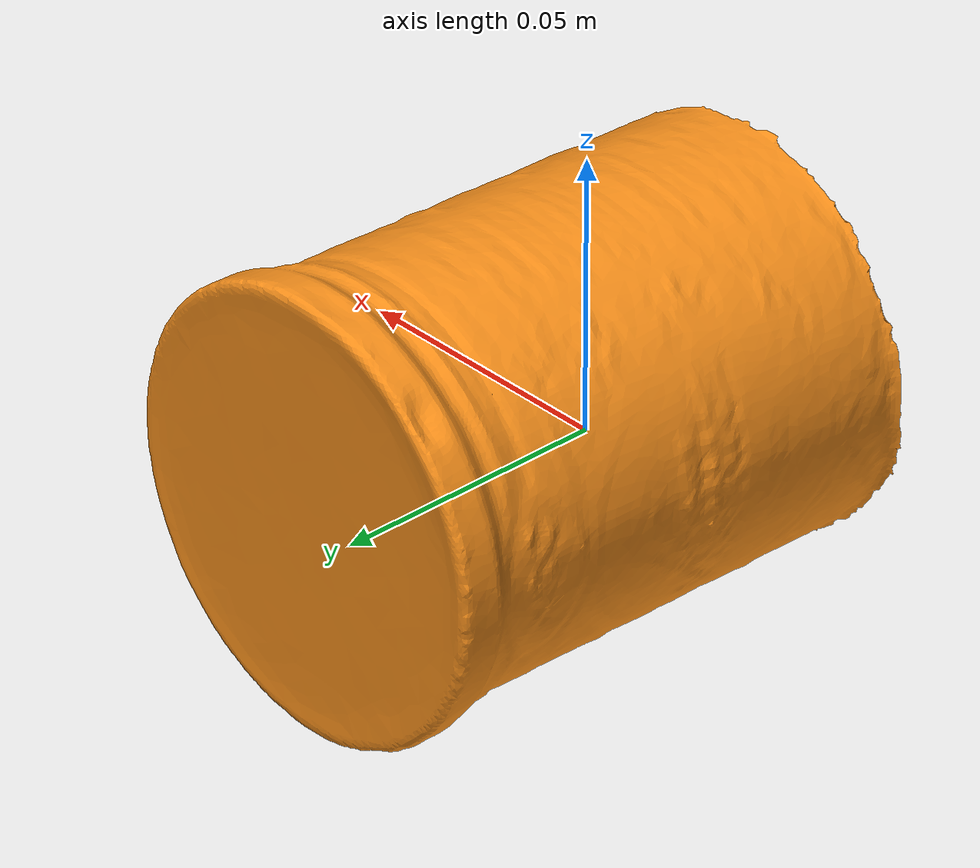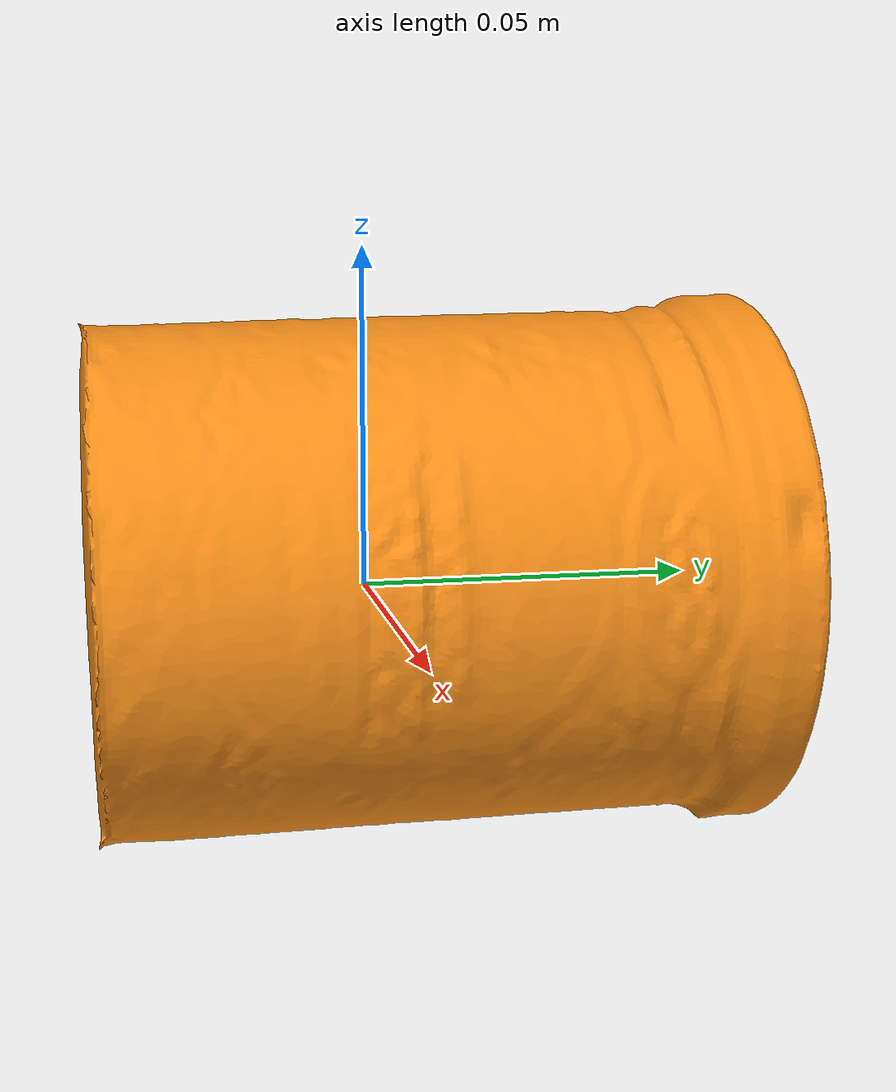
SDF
<?xml version='1.0'?>
<sdf version="1.4">
  <model name="OrangeMarmelade">
    <static>false</static>
    <link name="link">
      <inertial>
        <pose>0.005420017347350783 0.008102220559722187 0.003129188284147739 -1.5982873067562264 -0.8129459014486548 3.138655437994924</pose>
        <mass>0.04362792365336568</mass>
        <inertia>
          <ixx>4.890759663997304e-05</ixx>
          <ixy>-1.2071916927088675e-21</ixy>
          <ixz>3.5257485294376455e-21</ixz>
          <iyy>4.874286575629323e-05</iyy>
          <iyz>-2.1521467013657795e-21</iyz>
          <izz>3.179317529241631e-05</izz>
        </inertia>
      </inertial>
      <collision name="collision">
        <geometry>
          <mesh>
            <!-- Use a downsampled mesh for collisions -->
            <uri>model:///OrangeMarmelade/OrangeMarmelade_250_collision.obj</uri>
	        </mesh>
        </geometry>
        <surface>
      </surface>
      </collision>
      <visual name="visual">
        <geometry>
          <mesh>
            <uri>model:///OrangeMarmelade/OrangeMarmelade_25k_tex.obj</uri>
	        </mesh>
        </geometry>
        <material>
          <script>
            <uri>model:///OrangeMarmelade/OrangeMarmelade.material</uri>
            <name>OrangeMarmelade</name>
          </script>
        </material>
      </visual>
    </link>
  </model>
</sdf>
